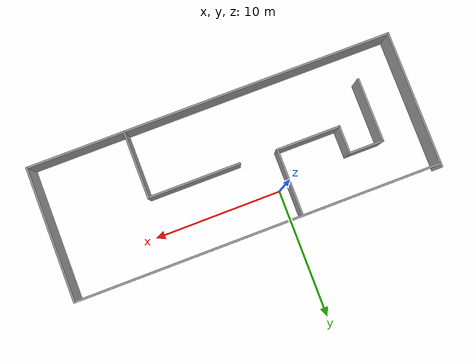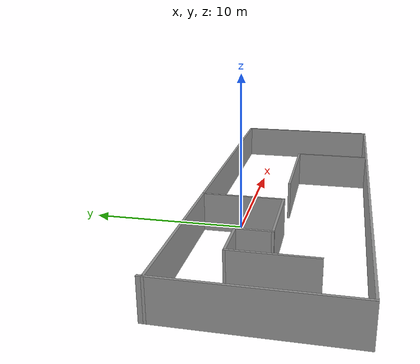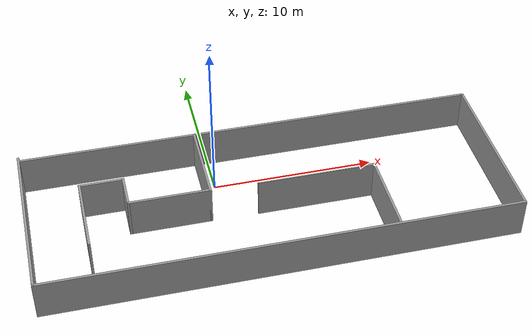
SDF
<?xml version='1.0'?>
<sdf version='1.7'>
  <model name='rome'>
    <pose>2.65379 -2.73071 0 0 -0 0</pose>
    <link name='Wall_0'>
      <collision name='Wall_0_Collision'>
        <geometry>
          <box>
            <size>10.75 0.15 2.5</size>
          </box>
        </geometry>
        <pose>0 0 1.25 0 -0 0</pose>
      </collision>
      <visual name='Wall_0_Visual'>
        <pose>0 0 1.25 0 -0 0</pose>
        <geometry>
          <box>
            <size>10.75 0.15 2.5</size>
          </box>
        </geometry>
        <material>
          <script>
            <uri>file://media/materials/scripts/gazebo.material</uri>
            <name>Gazebo/Grey</name>
          </script>
          <ambient>1 1 1 1</ambient>
        </material>
        <meta>
          <layer>0</layer>
        </meta>
      </visual>
      <pose>-14.175 0 0 0 -0 -1.5708</pose>
    </link>
    <link name='Wall_1'>
      <collision name='Wall_1_Collision'>
        <geometry>
          <box>
            <size>28.5 0.15 2.5</size>
          </box>
        </geometry>
        <pose>0 0 1.25 0 -0 0</pose>
      </collision>
      <visual name='Wall_1_Visual'>
        <pose>0 0 1.25 0 -0 0</pose>
        <geometry>
          <box>
            <size>28.5 0.15 2.5</size>
          </box>
        </geometry>
        <material>
          <script>
            <uri>file://media/materials/scripts/gazebo.material</uri>
            <name>Gazebo/Grey</name>
          </script>
          <ambient>1 1 1 1</ambient>
        </material>
        <meta>
          <layer>0</layer>
        </meta>
      </visual>
      <pose>0 -5.3 0 0 -0 0</pose>
    </link>
    <link name='Wall_10'>
      <collision name='Wall_10_Collision'>
        <geometry>
          <box>
            <size>5 0.15 2.5</size>
          </box>
        </geometry>
        <pose>0 0 1.25 0 -0 0</pose>
      </collision>
      <visual name='Wall_10_Visual'>
        <pose>0 0 1.25 0 -0 0</pose>
        <geometry>
          <box>
            <size>5 0.15 2.5</size>
          </box>
        </geometry>
        <material>
          <script>
            <uri>file://media/materials/scripts/gazebo.material</uri>
            <name>Gazebo/Grey</name>
          </script>
          <ambient>1 1 1 1</ambient>
        </material>
        <meta>
          <layer>0</layer>
        </meta>
      </visual>
      <pose>-10.8547 -0.417288 0 0 -0 -1.5708</pose>
    </link>
    <link name='Wall_12'>
      <collision name='Wall_12_Collision'>
        <geometry>
          <box>
            <size>7.25 0.15 2.5</size>
          </box>
        </geometry>
        <pose>0 0 1.25 0 -0 0</pose>
      </collision>
      <visual name='Wall_12_Visual'>
        <pose>0 0 1.25 0 -0 0</pose>
        <geometry>
          <box>
            <size>7.25 0.15 2.5</size>
          </box>
        </geometry>
        <material>
          <script>
            <uri>file://media/materials/scripts/gazebo.material</uri>
            <name>Gazebo/Grey</name>
          </script>
          <ambient>1 1 1 1</ambient>
        </material>
        <meta>
          <layer>0</layer>
        </meta>
      </visual>
      <pose>3.08194 -0.131446 0 0 -0 0</pose>
    </link>
    <link name='Wall_13'>
      <collision name='Wall_13_Collision'>
        <geometry>
          <box>
            <size>5.25 0.15 2.5</size>
          </box>
        </geometry>
        <pose>0 0 1.25 0 -0 0</pose>
      </collision>
      <visual name='Wall_13_Visual'>
        <pose>0 0 1.25 0 -0 0</pose>
        <geometry>
          <box>
            <size>5.25 0.15 2.5</size>
          </box>
        </geometry>
        <material>
          <script>
            <uri>file://media/materials/scripts/gazebo.material</uri>
            <name>Gazebo/Grey</name>
          </script>
          <ambient>1 1 1 1</ambient>
        </material>
        <meta>
          <layer>0</layer>
        </meta>
      </visual>
      <pose>6.63194 -2.68145 0 0 -0 -1.5708</pose>
    </link>
    <link name='Wall_2'>
      <collision name='Wall_2_Collision'>
        <geometry>
          <box>
            <size>10.5 0.15 2.5</size>
          </box>
        </geometry>
        <pose>0 0 1.25 0 -0 0</pose>
      </collision>
      <visual name='Wall_2_Visual'>
        <pose>0 0 1.25 0 -0 0</pose>
        <geometry>
          <box>
            <size>10.5 0.15 2.5</size>
          </box>
        </geometry>
        <material>
          <script>
            <uri>file://media/materials/scripts/gazebo.material</uri>
            <name>Gazebo/Grey</name>
          </script>
          <ambient>1 1 1 1</ambient>
        </material>
        <meta>
          <layer>0</layer>
        </meta>
      </visual>
      <pose>14.175 -0.125 0 0 -0 1.5708</pose>
    </link>
    <link name='Wall_3'>
      <collision name='Wall_3_Collision'>
        <geometry>
          <box>
            <size>0.15 0.15 2.5</size>
          </box>
        </geometry>
        <pose>0 0 1.25 0 -0 0</pose>
      </collision>
      <visual name='Wall_3_Visual'>
        <pose>0 0 1.25 0 -0 0</pose>
        <geometry>
          <box>
            <size>0.15 0.15 2.5</size>
          </box>
        </geometry>
        <material>
          <script>
            <uri>file://media/materials/scripts/gazebo.material</uri>
            <name>Gazebo/Grey</name>
          </script>
          <ambient>1 1 1 1</ambient>
        </material>
        <meta>
          <layer>0</layer>
        </meta>
      </visual>
      <pose>14.175 5.05 0 0 -0 0</pose>
    </link>
    <link name='Wall_4'>
      <collision name='Wall_4_Collision'>
        <geometry>
          <box>
            <size>28.5 0.15 2.5</size>
          </box>
        </geometry>
        <pose>0 0 1.25 0 -0 0</pose>
      </collision>
      <visual name='Wall_4_Visual'>
        <pose>0 0 1.25 0 -0 0</pose>
        <geometry>
          <box>
            <size>28.5 0.15 2.5</size>
          </box>
        </geometry>
        <material>
          <script>
            <uri>file://media/materials/scripts/gazebo.material</uri>
            <name>Gazebo/Grey</name>
          </script>
          <ambient>1 1 1 1</ambient>
        </material>
        <meta>
          <layer>0</layer>
        </meta>
      </visual>
      <pose>0 5.05 0 0 -0 3.14159</pose>
    </link>
    <link name='Wall_6'>
      <collision name='Wall_6_Collision'>
        <geometry>
          <box>
            <size>5.25 0.15 2.5</size>
          </box>
        </geometry>
        <pose>0 0 1.25 0 -0 0</pose>
      </collision>
      <visual name='Wall_6_Visual'>
        <pose>0 0 1.25 0 -0 0</pose>
        <geometry>
          <box>
            <size>5.25 0.15 2.5</size>
          </box>
        </geometry>
        <material>
          <script>
            <uri>file://media/materials/scripts/gazebo.material</uri>
            <name>Gazebo/Grey</name>
          </script>
          <ambient>1 1 1 1</ambient>
        </material>
        <meta>
          <layer>0</layer>
        </meta>
      </visual>
      <pose>-3.40472 2.45771 0 0 -0 -1.5708</pose>
    </link>
    <link name='Wall_7'>
      <collision name='Wall_7_Collision'>
        <geometry>
          <box>
            <size>5 0.15 2.5</size>
          </box>
        </geometry>
        <pose>0 0 1.25 0 -0 0</pose>
      </collision>
      <visual name='Wall_7_Visual'>
        <pose>0 0 1.25 0 -0 0</pose>
        <geometry>
          <box>
            <size>5 0.15 2.5</size>
          </box>
        </geometry>
        <material>
          <script>
            <uri>file://media/materials/scripts/gazebo.material</uri>
            <name>Gazebo/Grey</name>
          </script>
          <ambient>1 1 1 1</ambient>
        </material>
        <meta>
          <layer>0</layer>
        </meta>
      </visual>
      <pose>-5.82972 -0.092288 0 0 -0 3.14159</pose>
    </link>
    <link name='Wall_8'>
      <collision name='Wall_8_Collision'>
        <geometry>
          <box>
            <size>2.25 0.15 2.5</size>
          </box>
        </geometry>
        <pose>0 0 1.25 0 -0 0</pose>
      </collision>
      <visual name='Wall_8_Visual'>
        <pose>0 0 1.25 0 -0 0</pose>
        <geometry>
          <box>
            <size>2.25 0.15 2.5</size>
          </box>
        </geometry>
        <material>
          <script>
            <uri>file://media/materials/scripts/gazebo.material</uri>
            <name>Gazebo/Grey</name>
          </script>
          <ambient>1 1 1 1</ambient>
        </material>
        <meta>
          <layer>0</layer>
        </meta>
      </visual>
      <pose>-8.25472 0.957712 0 0 -0 1.5708</pose>
    </link>
    <link name='Wall_9'>
      <collision name='Wall_9_Collision'>
        <geometry>
          <box>
            <size>2.75 0.15 2.5</size>
          </box>
        </geometry>
        <pose>0 0 1.25 0 -0 0</pose>
      </collision>
      <visual name='Wall_9_Visual'>
        <pose>0 0 1.25 0 -0 0</pose>
        <geometry>
          <box>
            <size>2.75 0.15 2.5</size>
          </box>
        </geometry>
        <material>
          <script>
            <uri>file://media/materials/scripts/gazebo.material</uri>
            <name>Gazebo/Grey</name>
          </script>
          <ambient>1 1 1 1</ambient>
        </material>
        <meta>
          <layer>0</layer>
        </meta>
      </visual>
      <pose>-9.55472 2.00771 0 0 -0 3.14159</pose>
    </link>
    <static>1</static>
  </model>
</sdf>
